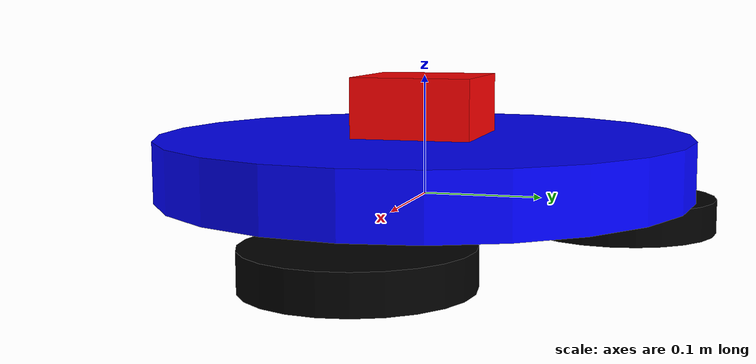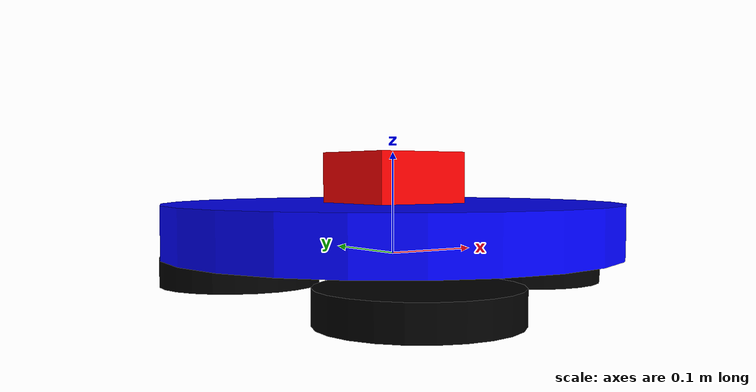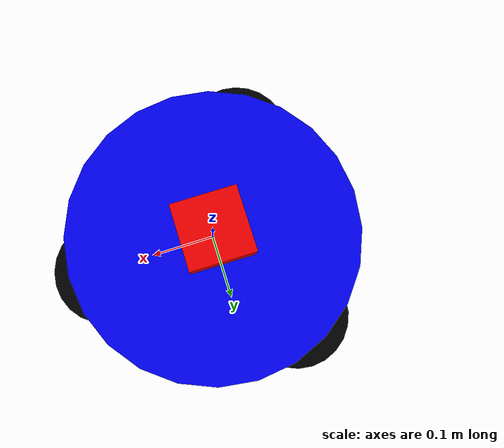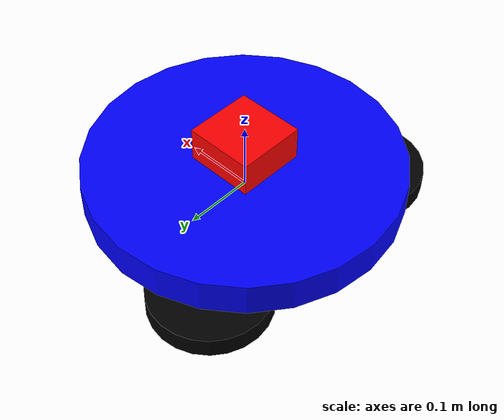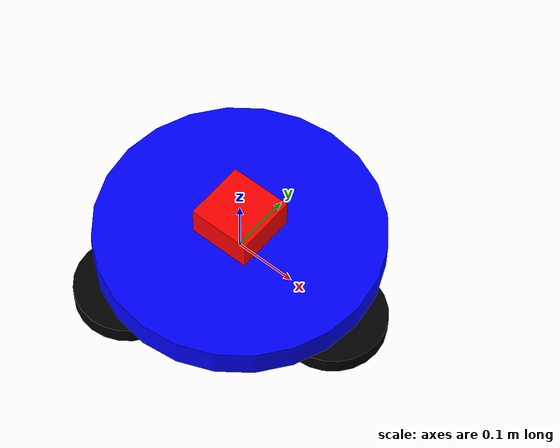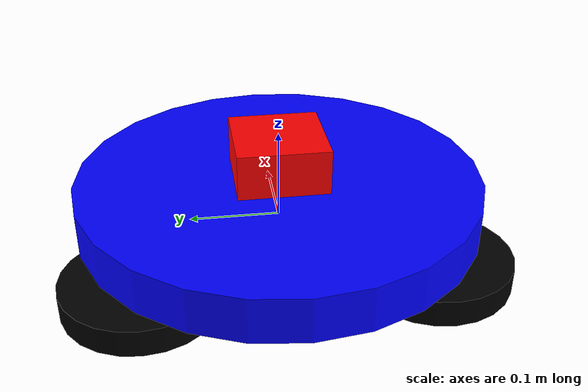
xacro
<?xml version="1.0"?>
<robot name="robotino" xmlns:xacro="http://ros.org/wiki/xacro">

  <!-- Define Robot Constants -->
  <xacro:property name="base_radius" value="0.225"/> <!-- Radius of the base -->
  <xacro:property name="base_height" value="0.05"/> <!-- Height of the base -->
  <xacro:property name="wheel_radius" value="0.085"/> <!-- Radius of the wheels -->
  <xacro:property name="wheel_width" value="0.03"/> <!-- Width of the wheels -->
  <xacro:property name="wheel_y_offset" value="0.18"/> <!-- Distance from center to wheel -->
  <xacro:property name="wheel_z_offset" value="-0.05"/> <!-- Vertical offset of the wheels -->

  <!-- Define Inertial Macros -->
  <xacro:macro name="cylinder_inertia" params="m r h">
    <inertial>
      <origin xyz="0 0 0" rpy="${pi/2} 0 0"/>
      <mass value="${m}"/>
      <inertia ixx="${(m/12) * (3*r*r + h*h)}" ixy="0" ixz="0" iyy="${(m/12) * (3*r*r + h*h)}" iyz="0" izz="${(m/2) * (r*r)}"/>
    </inertial>
  </xacro:macro>

  <!-- Base Link -->
  <link name="base_link">
    <visual>
      <geometry>
        <cylinder radius="${base_radius}" length="${base_height}"/>
      </geometry>
      <material name="blue">
        <color rgba="0 0 1 1"/>
      </material>
    </visual>
    <collision>
      <geometry>
        <cylinder radius="${base_radius}" length="${base_height}"/>
      </geometry>
    </collision>
    <xacro:cylinder_inertia m="10" r="${base_radius}" h="${base_height}"/>
  </link>

  <!-- Base Footprint (Virtual Link) -->
  <link name="base_footprint"/>

  <joint name="base_joint" type="fixed">
      <parent link="base_footprint"/>
      <child link="base_link"/>
      <origin xyz="0 0 ${base_height/2}" rpy="0 0 0"/>
  </joint>

  <!-- Wheels -->
  <xacro:macro name="wheel" params="prefix angle">
    <link name="${prefix}_wheel">
      <visual>
        <geometry>
          <cylinder radius="${wheel_radius}" length="${wheel_width}"/>
        </geometry>
        <material name="black">
          <color rgba="0 0 0 1"/>
        </material>
      </visual>
      <collision>
        <geometry>
          <cylinder radius="${wheel_radius}" length="${wheel_width}"/>
        </geometry>
      </collision>
      <xacro:cylinder_inertia m="0.5" r="${wheel_radius}" h="${wheel_width}"/>
    </link>

    <joint name="${prefix}_joint" type="continuous">
      <parent link="base_link"/>
      <child link="${prefix}_wheel"/>
      <origin xyz="${wheel_y_offset*cos(angle)} ${wheel_y_offset*sin(angle)} ${wheel_z_offset}" rpy="0 0 0"/>
      <axis xyz="1 0 0"/>
    </joint>
  </xacro:macro>

  <!-- Instantiate 3 Wheels -->
  <xacro:wheel prefix="wheel_1" angle="0"/>
  <xacro:wheel prefix="wheel_2" angle="${2*pi/3}"/>
  <xacro:wheel prefix="wheel_3" angle="${4*pi/3}"/>

  <link name="laser_frame">
    <visual>
      <geometry>
        <box size="0.1 0.1 0.05"/>
      </geometry>
      <material name="red">
        <color rgba="1 0 0 1"/>
      </material>
    </visual>
    <collision>
      <geometry>
        <box size="0.1 0.1 0.05"/>
      </geometry>
    </collision>
    <xacro:cylinder_inertia m="0.1" r="0.05" h="0.05"/>
  </link>

  <joint name="lidar_joint" type="fixed">
      <parent link="base_link"/>
      <child link="laser_frame"/>
      <origin xyz="0 0 ${base_height/2 + 0.025}" rpy="0 0 0"/>
  </joint>

</robot>
